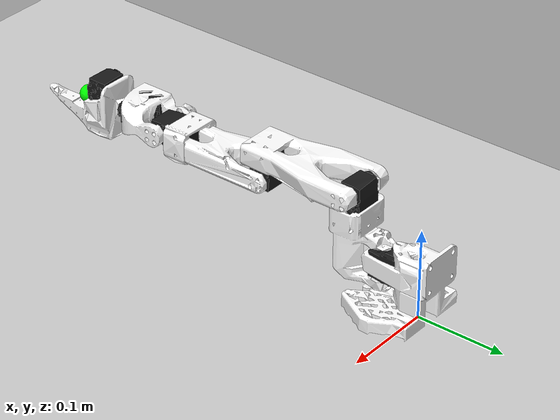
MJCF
<mujoco model="lerobot_so100_arms">
    <compiler angle="radian" meshdir="../model/so100/assets" autolimits="true"/>

    <option cone="elliptic" impratio="10"/>

    <asset>
        <material name="black" rgba="0.1 0.1 0.1 1"/>
        <material name="white" rgba="1 1 1 1"/>

        <mesh name="Base" file="Base.stl"/>
        <mesh name="Base_Motor" file="Base_Motor.stl"/>
        <mesh name="Rotation_Pitch" file="Rotation_Pitch.stl"/>
        <mesh name="Rotation_Pitch_Motor" file="Rotation_Pitch_Motor.stl"/>
        <mesh name="Upper_Arm" file="Upper_Arm.stl"/>
        <mesh name="Upper_Arm_Motor" file="Upper_Arm_Motor.stl"/>
        <mesh name="Lower_Arm" file="Lower_Arm.stl"/>
        <mesh name="Lower_Arm_Motor" file="Lower_Arm_Motor.stl"/>
        <mesh name="Wrist_Pitch_Roll" file="Wrist_Pitch_Roll.stl"/>
        <mesh name="Wrist_Pitch_Roll_Motor" file="Wrist_Pitch_Roll_Motor.stl"/>
        <mesh name="Fixed_Jaw" file="Fixed_Jaw.stl"/>
        <mesh name="Fixed_Jaw_Motor" file="Fixed_Jaw_Motor.stl"/>
    </asset>

    <default>
        <default class="so_arm100">
            <!-- 물리 안정성: 감쇠 및 마찰력 강화 -->
            <joint frictionloss="0.3" armature="0.1" damping="2.0"/>
            <!-- 제어 안정성: kv gain으로 속도 감쇠 추가 -->
            <position kp="50" kv="10" forcerange="-3.5 3.5"/>
            <default class="visual">
                <geom type="mesh" contype="0" conaffinity="0" density="0" group="2" material="white"/>
                <default class="motor_visual">
                    <geom material="black"/>
                </default>
            </default>
            <default class="collision">
                <geom group="3" type="mesh" material="white"/>
            </default>
        </default>
    </default>

    <worldbody>
        <light pos="0 0 2" dir="0 0 -1" diffuse="0.8 0.8 0.8" specular="0.3 0.3 0.3"/>
        <geom name="floor" type="plane" size="1 1 0.1" rgba="0.8 0.8 0.8 1" pos="0 0 -0.01"/>

        <body name="Base" childclass="so_arm100" pos="0 0 0">
            <geom type="mesh" mesh="Base" class="visual"/>
            <geom type="mesh" mesh="Base_Motor" class="motor_visual"/>
            <geom type="mesh" mesh="Base" class="collision"/>

            <!-- 1. Rotation (Yaw) -->
            <body name="Rotation_Pitch" pos="0 -0.0452 0.0165" quat="0.707105 0.707108 0 0">
                <inertial pos="-9.07886e-05 0.0590972 0.031089" quat="0.363978 0.441169 -0.623108 0.533504" mass="0.119226" diaginertia="5.94278e-05 5.89975e-05 3.13712e-05"/>
                <joint name="Rotation" axis="0 1 0" range="-1.92 1.92"/>
                <geom type="mesh" mesh="Rotation_Pitch" class="visual"/>
                <geom type="mesh" mesh="Rotation_Pitch_Motor" class="motor_visual"/>
                <geom type="mesh" mesh="Rotation_Pitch" class="collision"/>

                <!-- 2. Pitch -->
                <body name="Upper_Arm" pos="0 0.1025 0.0306" euler="1.57079 0 0">
                    <inertial pos="-1.72052e-05 0.0701802 0.00310545" quat="0.50104 0.498994 -0.493562 0.50632" mass="0.162409" diaginertia="0.000213312 0.000167164 7.01522e-05"/>
                    <joint name="Pitch" axis="1 0 0" range="-3.32 0.174"/>
                    <geom type="mesh" mesh="Upper_Arm" class="visual"/>
                    <geom type="mesh" mesh="Upper_Arm_Motor" class="motor_visual"/>
                    <geom type="mesh" mesh="Upper_Arm" class="collision"/>

                    <!-- 3. Elbow -->
                    <body name="Lower_Arm" pos="0 0.11257 0.028" euler="-1.57079 0 0">
                        <inertial pos="-0.00339604 0.00137796 0.0768007" quat="0.701995 0.0787996 0.0645626 0.704859" mass="0.147968" diaginertia="0.000138803 0.000107748 4.84242e-05"/>
                        <joint name="Elbow" axis="1 0 0" range="-0.174 3.14"/>
                        <geom type="mesh" mesh="Lower_Arm" class="visual"/>
                        <geom type="mesh" mesh="Lower_Arm_Motor" class="motor_visual"/>
                        <geom type="mesh" mesh="Lower_Arm" class="collision"/>

                        <!-- 4. Wrist Pitch -->
                        <body name="Wrist_Pitch_Roll" pos="0 0.0052 0.1349" euler="-1.57079 0 0">
                            <inertial pos="-0.00852653 -0.0352279 -2.34622e-05" quat="-0.0522806 0.705235 0.0549524 0.704905" mass="0.0661321" diaginertia="3.45403e-05 2.39041e-05 1.94704e-05"/>
                            <joint name="Wrist_Pitch" axis="1 0 0" range="-1.66 1.66"/>
                            <geom type="mesh" mesh="Wrist_Pitch_Roll" class="visual"/>
                            <geom type="mesh" mesh="Wrist_Pitch_Roll_Motor" class="motor_visual"/>
                            <geom type="mesh" mesh="Wrist_Pitch_Roll" class="collision"/>

                            <!-- 5. Wrist Roll -->
                            <body name="Fixed_Jaw" pos="0 -0.0601 0" euler="0 1.57079 0">
                                <inertial pos="0.00552377 -0.0280167 0.000483583" quat="0.41836 0.620891 -0.350644 0.562599" mass="0.0929859" diaginertia="5.03136e-05 4.64098e-05 2.72961e-05"/>
                                <joint name="Wrist_Roll" axis="0 1 0" range="-2.79 2.79"/>
                                <geom type="mesh" mesh="Fixed_Jaw" class="visual"/>
                                <geom type="mesh" mesh="Fixed_Jaw_Motor" class="motor_visual"/>
                                <geom type="mesh" mesh="Fixed_Jaw" class="collision"/>

                                <!-- End of arm pointer for visualization -->
                                <site name="hand_axis" pos="0 -0.05 0" size="0.01" rgba="0 1 0 1"/>
                            </body>
                        </body>
                    </body>
                </body>
            </body>
        </body>
    </worldbody>

    <actuator>
        <position name="Rotation" joint="Rotation" inheritrange="1"/>
        <position name="Pitch" joint="Pitch" inheritrange="1"/>
        <position name="Elbow" joint="Elbow" inheritrange="1"/>
        <position name="Wrist_Pitch" joint="Wrist_Pitch" inheritrange="1"/>
        <position name="Wrist_Roll" joint="Wrist_Roll" inheritrange="1"/>
    </actuator>

    <contact>
        <exclude body1="Base" body2="Rotation_Pitch"/>
    </contact>

    <keyframe>
        <key name="home" qpos="0 -1.57 1.57 1.57 -1.57" ctrl="0 -1.57 1.57 1.57 -1.57"/>
    </keyframe>
</mujoco>
